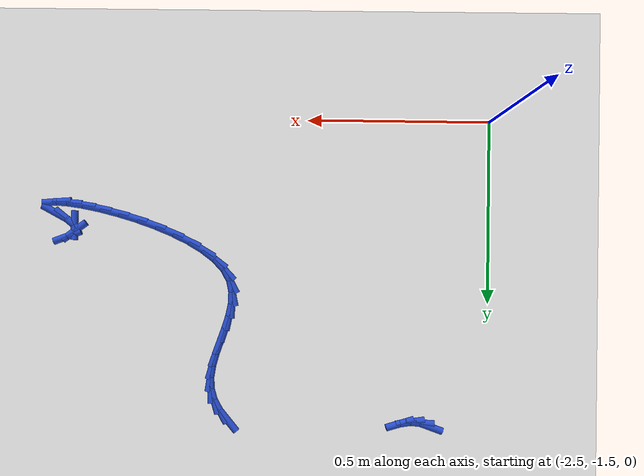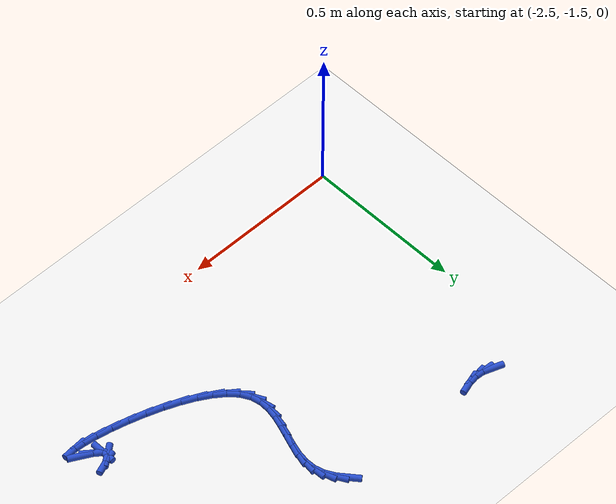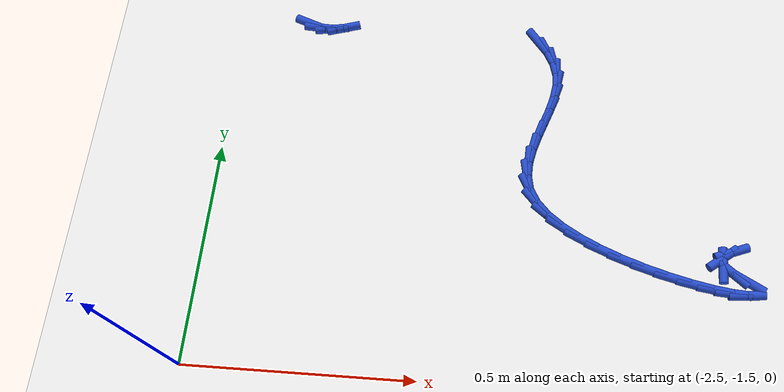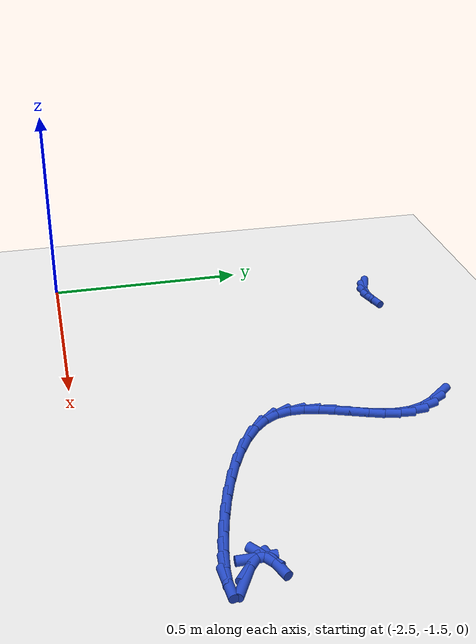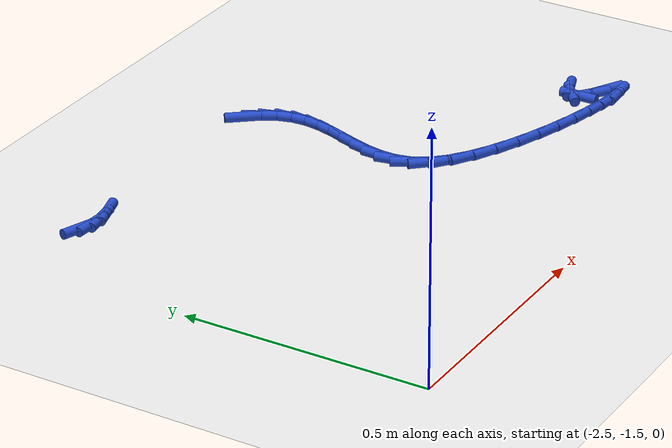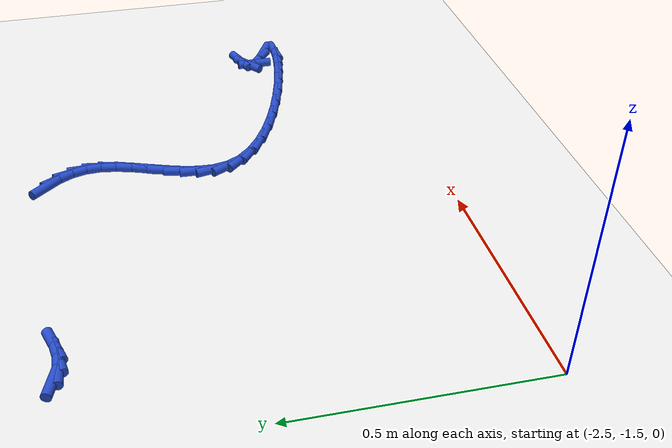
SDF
<sdf version="1.6">
 <world name="default">
  <model name="ground_plane">
   <static>1</static>
   <link name="link">
    <collision name="collision">
     <geometry><plane><normal>0 0 1</normal><size>100 100</size></plane></geometry>
     <surface><friction><ode><mu>100</mu><mu2>50</mu2></ode></friction></surface>
    </collision>
    <visual name="visual">
     <cast_shadows>0</cast_shadows>
     <geometry><plane><normal>0 0 1</normal><size>100 100</size></plane></geometry>
     <material>
      <script><uri>file://media/materials/scripts/gazebo.material</uri><name>Gazebo/WhiteGlow</name></script>
     </material>
    </visual>
   </link>
  </model>
  <model name="line">
   <link name="link_157">
    <pose>-2.338324952039317 -0.6623331051438754 0.01 0 1.57 -0.3426726866504354</pose>
    <collision name="collision">
     <geometry><cylinder><radius>0.01</radius><length>0.08</length></cylinder></geometry>
    </collision>
    <visual name="visual">
     <material>
      <script><name>Gazebo/Blue</name><uri>file://media/materials/scripts/gazebo.material</uri></script>
     </material>
     <geometry><cylinder><radius>0.01</radius><length>0.08</length></cylinder></geometry>
    </visual>
   </link>
   <link name="link_158">
    <pose>-2.313842685416547 -0.671067076648717 0.01 0 1.57 -0.0639442292354079</pose>
    <collision name="collision">
     <geometry><cylinder><radius>0.01</radius><length>0.08</length></cylinder></geometry>
    </collision>
    <visual name="visual">
     <material>
      <script><name>Gazebo/Blue</name><uri>file://media/materials/scripts/gazebo.material</uri></script>
     </material>
     <geometry><cylinder><radius>0.01</radius><length>0.08</length></cylinder></geometry>
    </visual>
   </link>
   <link name="link_159">
    <pose>-2.2876719015448184 -0.6727428318533447 0.01 0 1.57 0.15194137652917442</pose>
    <collision name="collision">
     <geometry><cylinder><radius>0.01</radius><length>0.08</length></cylinder></geometry>
    </collision>
    <visual name="visual">
     <material>
      <script><name>Gazebo/Blue</name><uri>file://media/materials/scripts/gazebo.material</uri></script>
     </material>
     <geometry><cylinder><radius>0.01</radius><length>0.08</length></cylinder></geometry>
    </visual>
   </link>
   <link name="link_160">
    <pose>-2.2599004552114854 -0.668490425652512 0.01 0 1.57 0.29130013103650204</pose>
    <collision name="collision">
     <geometry><cylinder><radius>0.01</radius><length>0.08</length></cylinder></geometry>
    </collision>
    <visual name="visual">
     <material>
      <script><name>Gazebo/Blue</name><uri>file://media/materials/scripts/gazebo.material</uri></script>
     </material>
     <geometry><cylinder><radius>0.01</radius><length>0.08</length></cylinder></geometry>
    </visual>
   </link>
   <link name="link_174">
    <pose>-1.7857236445203606 -0.6747802986385937 0.01 0 1.57 -0.8866967197560425</pose>
    <collision name="collision">
     <geometry><cylinder><radius>0.01</radius><length>0.08</length></cylinder></geometry>
    </collision>
    <visual name="visual">
     <material>
      <script><name>Gazebo/Blue</name><uri>file://media/materials/scripts/gazebo.material</uri></script>
     </material>
     <geometry><cylinder><radius>0.01</radius><length>0.08</length></cylinder></geometry>
    </visual>
   </link>
   <link name="link_175">
    <pose>-1.7642782485717454 -0.7010786812748442 0.01 0 1.57 -1.073093588962113</pose>
    <collision name="collision">
     <geometry><cylinder><radius>0.01</radius><length>0.08</length></cylinder></geometry>
    </collision>
    <visual name="visual">
     <material>
      <script><name>Gazebo/Blue</name><uri>file://media/materials/scripts/gazebo.material</uri></script>
     </material>
     <geometry><cylinder><radius>0.01</radius><length>0.08</length></cylinder></geometry>
    </visual>
   </link>
   <link name="link_176">
    <pose>-1.748770050473102 -0.7296219015372853 0.01 0 1.57 -1.2924398240005606</pose>
    <collision name="collision">
     <geometry><cylinder><radius>0.01</radius><length>0.08</length></cylinder></geometry>
    </collision>
    <visual name="visual">
     <material>
      <script><name>Gazebo/Blue</name><uri>file://media/materials/scripts/gazebo.material</uri></script>
     </material>
     <geometry><cylinder><radius>0.01</radius><length>0.08</length></cylinder></geometry>
    </visual>
   </link>
   <link name="link_177">
    <pose>-1.740095521968369 -0.7599762191202668 0.01 0 1.57 -1.5332540149614575</pose>
    <collision name="collision">
     <geometry><cylinder><radius>0.01</radius><length>0.08</length></cylinder></geometry>
    </collision>
    <visual name="visual">
     <material>
      <script><name>Gazebo/Blue</name><uri>file://media/materials/scripts/gazebo.material</uri></script>
     </material>
     <geometry><cylinder><radius>0.01</radius><length>0.08</length></cylinder></geometry>
    </visual>
   </link>
   <link name="link_178">
    <pose>-1.7389032767663537 -0.7917186708867644 0.01 0 1.57 1.4160260385860834</pose>
    <collision name="collision">
     <geometry><cylinder><radius>0.01</radius><length>0.08</length></cylinder></geometry>
    </collision>
    <visual name="visual">
     <material>
      <script><name>Gazebo/Blue</name><uri>file://media/materials/scripts/gazebo.material</uri></script>
     </material>
     <geometry><cylinder><radius>0.01</radius><length>0.08</length></cylinder></geometry>
    </visual>
   </link>
   <link name="link_179">
    <pose>-1.7440186245346594 -0.8245055731755765 0.01 0 1.57 1.2964629445725697</pose>
    <collision name="collision">
     <geometry><cylinder><radius>0.01</radius><length>0.08</length></cylinder></geometry>
    </collision>
    <visual name="visual">
     <material>
      <script><name>Gazebo/Blue</name><uri>file://media/materials/scripts/gazebo.material</uri></script>
     </material>
     <geometry><cylinder><radius>0.01</radius><length>0.08</length></cylinder></geometry>
    </visual>
   </link>
   <link name="link_180">
    <pose>-1.7534529873907085 -0.858028631145417 0.01 0 1.57 1.2373223232279866</pose>
    <collision name="collision">
     <geometry><cylinder><radius>0.01</radius><length>0.08</length></cylinder></geometry>
    </collision>
    <visual name="visual">
     <material>
      <script><name>Gazebo/Blue</name><uri>file://media/materials/scripts/gazebo.material</uri></script>
     </material>
     <geometry><cylinder><radius>0.01</radius><length>0.08</length></cylinder></geometry>
    </visual>
   </link>
   <link name="link_181">
    <pose>-1.7652140190312322 -0.8919797138105089 0.01 0 1.57 1.2296700217951457</pose>
    <collision name="collision">
     <geometry><cylinder><radius>0.01</radius><length>0.08</length></cylinder></geometry>
    </collision>
    <visual name="visual">
     <material>
      <script><name>Gazebo/Blue</name><uri>file://media/materials/scripts/gazebo.material</uri></script>
     </material>
     <geometry><cylinder><radius>0.01</radius><length>0.08</length></cylinder></geometry>
    </visual>
   </link>
   <link name="link_182">
    <pose>-1.777309373152961 -0.9260506901850766 0.01 0 1.57 1.2719773422876481</pose>
    <collision name="collision">
     <geometry><cylinder><radius>0.01</radius><length>0.08</length></cylinder></geometry>
    </collision>
    <visual name="visual">
     <material>
      <script><name>Gazebo/Blue</name><uri>file://media/materials/scripts/gazebo.material</uri></script>
     </material>
     <geometry><cylinder><radius>0.01</radius><length>0.08</length></cylinder></geometry>
    </visual>
   </link>
   <link name="link_183">
    <pose>-1.7877467034526253 -0.9599334292833454 0.01 0 1.57 1.370243778938242</pose>
    <collision name="collision">
     <geometry><cylinder><radius>0.01</radius><length>0.08</length></cylinder></geometry>
    </collision>
    <visual name="visual">
     <material>
      <script><name>Gazebo/Blue</name><uri>file://media/materials/scripts/gazebo.material</uri></script>
     </material>
     <geometry><cylinder><radius>0.01</radius><length>0.08</length></cylinder></geometry>
    </visual>
   </link>
   <link name="link_184">
    <pose>-1.794533663626956 -0.9933198001195375 0.01 0 1.57 1.5356917234830645</pose>
    <collision name="collision">
     <geometry><cylinder><radius>0.01</radius><length>0.08</length></cylinder></geometry>
    </collision>
    <visual name="visual">
     <material>
      <script><name>Gazebo/Blue</name><uri>file://media/materials/scripts/gazebo.material</uri></script>
     </material>
     <geometry><cylinder><radius>0.01</radius><length>0.08</length></cylinder></geometry>
    </visual>
   </link>
   <link name="link_185">
    <pose>-1.795677907372684 -1.0259016717078788 0.01 0 1.57 -1.3673896610342577</pose>
    <collision name="collision">
     <geometry><cylinder><radius>0.01</radius><length>0.08</length></cylinder></geometry>
    </collision>
    <visual name="visual">
     <material>
      <script><name>Gazebo/Blue</name><uri>file://media/materials/scripts/gazebo.material</uri></script>
     </material>
     <geometry><cylinder><radius>0.01</radius><length>0.08</length></cylinder></geometry>
    </visual>
   </link>
   <link name="link_186">
    <pose>-1.78918708838654 -1.0573709130625915 0.01 0 1.57 -1.0789201089539966</pose>
    <collision name="collision">
     <geometry><cylinder><radius>0.01</radius><length>0.08</length></cylinder></geometry>
    </collision>
    <visual name="visual">
     <material>
      <script><name>Gazebo/Blue</name><uri>file://media/materials/scripts/gazebo.material</uri></script>
     </material>
     <geometry><cylinder><radius>0.01</radius><length>0.08</length></cylinder></geometry>
    </visual>
   </link>
   <link name="link_187">
    <pose>-1.773086755085308 -1.0874200286717657 0.01 0 1.57 -0.8224425653734742</pose>
    <collision name="collision">
     <geometry><cylinder><radius>0.01</radius><length>0.08</length></cylinder></geometry>
    </collision>
    <visual name="visual">
     <material>
      <script><name>Gazebo/Blue</name><uri>file://media/materials/scripts/gazebo.material</uri></script>
     </material>
     <geometry><cylinder><radius>0.01</radius><length>0.08</length></cylinder></geometry>
    </visual>
   </link>
   <link name="link_188">
    <pose>-1.7467452293395962 -1.1157892073366524 0.01 0 1.57 -0.6487569784775605</pose>
    <collision name="collision">
     <geometry><cylinder><radius>0.01</radius><length>0.08</length></cylinder></geometry>
    </collision>
    <visual name="visual">
     <material>
      <script><name>Gazebo/Blue</name><uri>file://media/materials/scripts/gazebo.material</uri></script>
     </material>
     <geometry><cylinder><radius>0.01</radius><length>0.08</length></cylinder></geometry>
    </visual>
   </link>
   <link name="link_189">
    <pose>-1.7117836577512706 -1.1422986397379624 0.01 0 1.57 -0.530326854718737</pose>
    <collision name="collision">
     <geometry><cylinder><radius>0.01</radius><length>0.08</length></cylinder></geometry>
    </collision>
    <visual name="visual">
     <material>
      <script><name>Gazebo/Blue</name><uri>file://media/materials/scripts/gazebo.material</uri></script>
     </material>
     <geometry><cylinder><radius>0.01</radius><length>0.08</length></cylinder></geometry>
    </visual>
   </link>
   <link name="link_190">
    <pose>-1.6700385119525123 -1.1667761631375508 0.01 0 1.57 -0.4451006860257539</pose>
    <collision name="collision">
     <geometry><cylinder><radius>0.01</radius><length>0.08</length></cylinder></geometry>
    </collision>
    <visual name="visual">
     <material>
      <script><name>Gazebo/Blue</name><uri>file://media/materials/scripts/gazebo.material</uri></script>
     </material>
     <geometry><cylinder><radius>0.01</radius><length>0.08</length></cylinder></geometry>
    </visual>
   </link>
   <link name="link_191">
    <pose>-1.6233462635755005 -1.1890496147972764 0.01 0 1.57 -0.3800920105214277</pose>
    <collision name="collision">
     <geometry><cylinder><radius>0.01</radius><length>0.08</length></cylinder></geometry>
    </collision>
    <visual name="visual">
     <material>
      <script><name>Gazebo/Blue</name><uri>file://media/materials/scripts/gazebo.material</uri></script>
     </material>
     <geometry><cylinder><radius>0.01</radius><length>0.08</length></cylinder></geometry>
    </visual>
   </link>
   <link name="link_192">
    <pose>-1.5735433842524171 -1.2089468319789949 0.01 0 1.57 -0.32743358398811984</pose>
    <collision name="collision">
     <geometry><cylinder><radius>0.01</radius><length>0.08</length></cylinder></geometry>
    </collision>
    <visual name="visual">
     <material>
      <script><name>Gazebo/Blue</name><uri>file://media/materials/scripts/gazebo.material</uri></script>
     </material>
     <geometry><cylinder><radius>0.01</radius><length>0.08</length></cylinder></geometry>
    </visual>
   </link>
   <link name="link_193">
    <pose>-1.5224663456154417 -1.2262956519445636 0.01 0 1.57 -0.2818737148728541</pose>
    <collision name="collision">
     <geometry><cylinder><radius>0.01</radius><length>0.08</length></cylinder></geometry>
    </collision>
    <visual name="visual">
     <material>
      <script><name>Gazebo/Blue</name><uri>file://media/materials/scripts/gazebo.material</uri></script>
     </material>
     <geometry><cylinder><radius>0.01</radius><length>0.08</length></cylinder></geometry>
    </visual>
   </link>
   <link name="link_194">
    <pose>-1.4719516192967537 -1.2409239119558402 0.01 0 1.57 -0.23923045475559204</pose>
    <collision name="collision">
     <geometry><cylinder><radius>0.01</radius><length>0.08</length></cylinder></geometry>
    </collision>
    <visual name="visual">
     <material>
      <script><name>Gazebo/Blue</name><uri>file://media/materials/scripts/gazebo.material</uri></script>
     </material>
     <geometry><cylinder><radius>0.01</radius><length>0.08</length></cylinder></geometry>
    </visual>
   </link>
   <link name="link_195">
    <pose>-1.4238356769285352 -1.2526594492746812 0.01 0 1.57 -0.19508303757367426</pose>
    <collision name="collision">
     <geometry><cylinder><radius>0.01</radius><length>0.08</length></cylinder></geometry>
    </collision>
    <visual name="visual">
     <material>
      <script><name>Gazebo/Blue</name><uri>file://media/materials/scripts/gazebo.material</uri></script>
     </material>
     <geometry><cylinder><radius>0.01</radius><length>0.08</length></cylinder></geometry>
    </visual>
   </link>
   <link name="link_196">
    <pose>-1.3799549901429637 -1.2613301011629434 0.01 0 1.57 -0.14273477950361751</pose>
    <collision name="collision">
     <geometry><cylinder><radius>0.01</radius><length>0.08</length></cylinder></geometry>
    </collision>
    <visual name="visual">
     <material>
      <script><name>Gazebo/Blue</name><uri>file://media/materials/scripts/gazebo.material</uri></script>
     </material>
     <geometry><cylinder><radius>0.01</radius><length>0.08</length></cylinder></geometry>
    </visual>
   </link>
   <link name="link_197">
    <pose>-1.342146030572223 -1.266763704882484 0.01 0 1.57 -0.06760055964173348</pose>
    <collision name="collision">
     <geometry><cylinder><radius>0.01</radius><length>0.08</length></cylinder></geometry>
    </collision>
    <visual name="visual">
     <material>
      <script><name>Gazebo/Blue</name><uri>file://media/materials/scripts/gazebo.material</uri></script>
     </material>
     <geometry><cylinder><radius>0.01</radius><length>0.08</length></cylinder></geometry>
    </visual>
   </link>
   <link name="link_198">
    <pose>-1.3122452698484908 -1.2687880976951598 0.01 0 1.57 0.07709307875085263</pose>
    <collision name="collision">
     <geometry><cylinder><radius>0.01</radius><length>0.08</length></cylinder></geometry>
    </collision>
    <visual name="visual">
     <material>
      <script><name>Gazebo/Blue</name><uri>file://media/materials/scripts/gazebo.material</uri></script>
     </material>
     <geometry><cylinder><radius>0.01</radius><length>0.08</length></cylinder></geometry>
    </visual>
   </link>
   <link name="link_202">
    <pose>-1.3084384593805 -1.23935234043662 0.01 0 1.57 -0.4966339450492215</pose>
    <collision name="collision">
     <geometry><cylinder><radius>0.01</radius><length>0.08</length></cylinder></geometry>
    </collision>
    <visual name="visual">
     <material>
      <script><name>Gazebo/Blue</name><uri>file://media/materials/scripts/gazebo.material</uri></script>
     </material>
     <geometry><cylinder><radius>0.01</radius><length>0.08</length></cylinder></geometry>
    </visual>
   </link>
   <link name="link_203">
    <pose>-1.3393768138324564 -1.2225856131486856 0.01 0 1.57 -0.6739392268318954</pose>
    <collision name="collision">
     <geometry><cylinder><radius>0.01</radius><length>0.08</length></cylinder></geometry>
    </collision>
    <visual name="visual">
     <material>
      <script><name>Gazebo/Blue</name><uri>file://media/materials/scripts/gazebo.material</uri></script>
     </material>
     <geometry><cylinder><radius>0.01</radius><length>0.08</length></cylinder></geometry>
    </visual>
   </link>
   <link name="link_204">
    <pose>-1.3612275416959445 -1.2051337420758155 0.01 0 1.57 -1.5707151254214768</pose>
    <collision name="collision">
     <geometry><cylinder><radius>0.01</radius><length>0.08</length></cylinder></geometry>
    </collision>
    <visual name="visual">
     <material>
      <script><name>Gazebo/Blue</name><uri>file://media/materials/scripts/gazebo.material</uri></script>
     </material>
     <geometry><cylinder><radius>0.01</radius><length>0.08</length></cylinder></geometry>
    </visual>
   </link>
   <link name="link_205">
    <pose>-1.3612288536350332 -1.1889771300560361 0.01 0 1.57 0.6484451601318459</pose>
    <collision name="collision">
     <geometry><cylinder><radius>0.01</radius><length>0.08</length></cylinder></geometry>
    </collision>
    <visual name="visual">
     <material>
      <script><name>Gazebo/Blue</name><uri>file://media/materials/scripts/gazebo.material</uri></script>
     </material>
     <geometry><cylinder><radius>0.01</radius><length>0.08</length></cylinder></geometry>
    </visual>
   </link>
   <link name="link_206">
    <pose>-1.3419282179672751 -1.1743519982001889 0.01 0 1.57 0.3588409749050662</pose>
    <collision name="collision">
     <geometry><cylinder><radius>0.01</radius><length>0.08</length></cylinder></geometry>
    </collision>
    <visual name="visual">
     <material>
      <script><name>Gazebo/Blue</name><uri>file://media/materials/scripts/gazebo.material</uri></script>
     </material>
     <geometry><cylinder><radius>0.01</radius><length>0.08</length></cylinder></geometry>
    </visual>
   </link>
  </model>
 </world>
</sdf>
